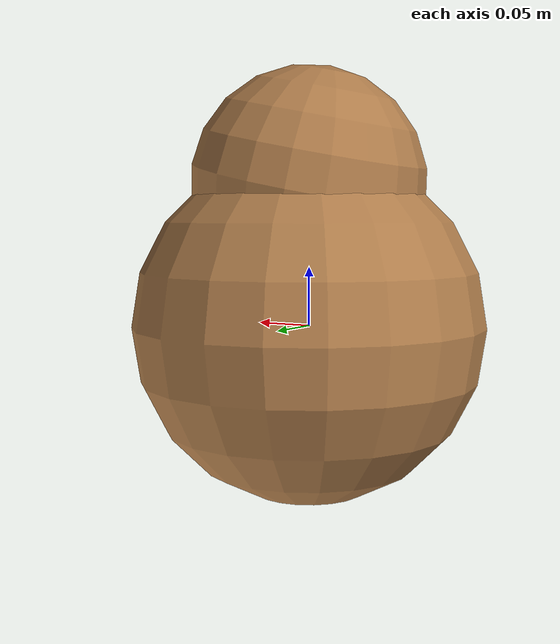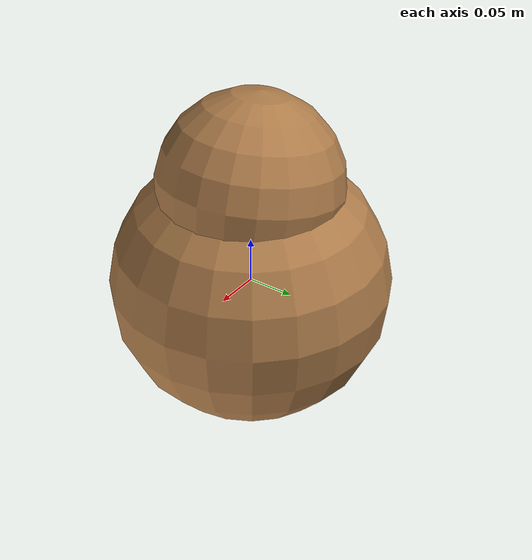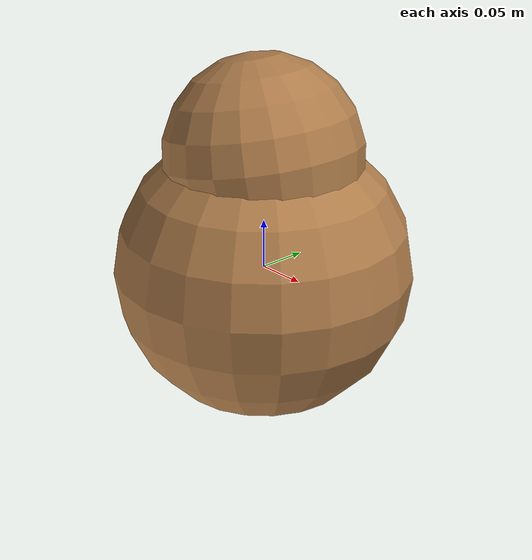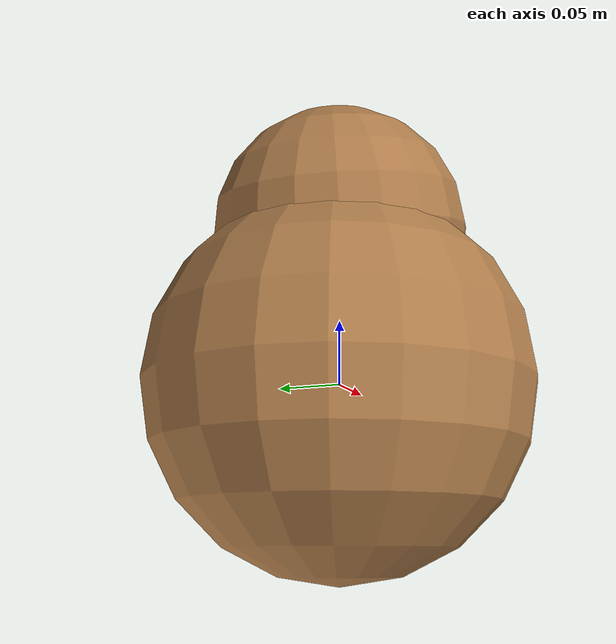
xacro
<?xml version="1.0" ?>
<robot name="bb" xmlns:xacro="http://ros.org/wiki/xacro">
  <xacro:include filename="$(find trackme)/urdf/bb-9.gazebo.xacro"/>
  <link name="base_link">
    <inertial>
      <mass value="1.0" />
      <!-- center of mass (com) is defined w.r.t. link local coordinate system -->
      <!-- give a little y-offset to make the top precess -->
      <origin xyz="0 0 0" />
      <inertia  ixx="1.0" ixy="0.0"  ixz="0.0"  iyy="1.0"  iyz="0.0"  izz="1.0" />
    </inertial>
    <visual>
      <!-- visual origin is defined w.r.t. link local coordinate system -->
      <origin xyz="0 0 0" rpy="0 0 0" />
      <geometry>
        <sphere radius="0.15"/>
      </geometry>
    </visual>
    <collision>
      <!-- collision origin is defined w.r.t. link local coordinate system -->
      <origin xyz="0 0 0" rpy="0 0 0" />
      <geometry>
        <sphere radius="0.15"/>
      </geometry>
    </collision>
  </link>
  <gazebo reference="base_link">
    <mu1>10</mu1>
    <mu2>10</mu2>
    <material>Gazebo/WoodFloor</material>
    <turnGravityOff>false</turnGravityOff>
  </gazebo>

  <joint name="head_joint" type="fixed">
    <origin xyz="0 0 0.12" rpy="0.2 0 -1.53"/>
    <parent link="base_link"/>
    <child link="head"/>
  </joint>

  <link name="head">
    <inertial>
      <mass value="0.0" />
      <!-- center of mass (com) is defined w.r.t. link local coordinate system -->
      <!-- give a little y-offset to make the top precess -->
      <origin xyz="0 0 0.2" />
      <inertia  ixx="1.0" ixy="0.0"  ixz="0.0"  iyy="1.0"  iyz="0.0"  izz="1.0" />
    </inertial>
    <visual>
      <!-- visual origin is defined w.r.t. link local coordinate system -->
      <origin xyz="0 0 0" rpy="0 0 0" />
      <geometry>
        <sphere radius="0.1"/>
      </geometry>
    </visual>
  </link>
  <gazebo reference="head">
    <mu1>10</mu1>
    <mu2>10</mu2>
    <material>Gazebo/WoodPallet </material>
  </gazebo>
</robot>
